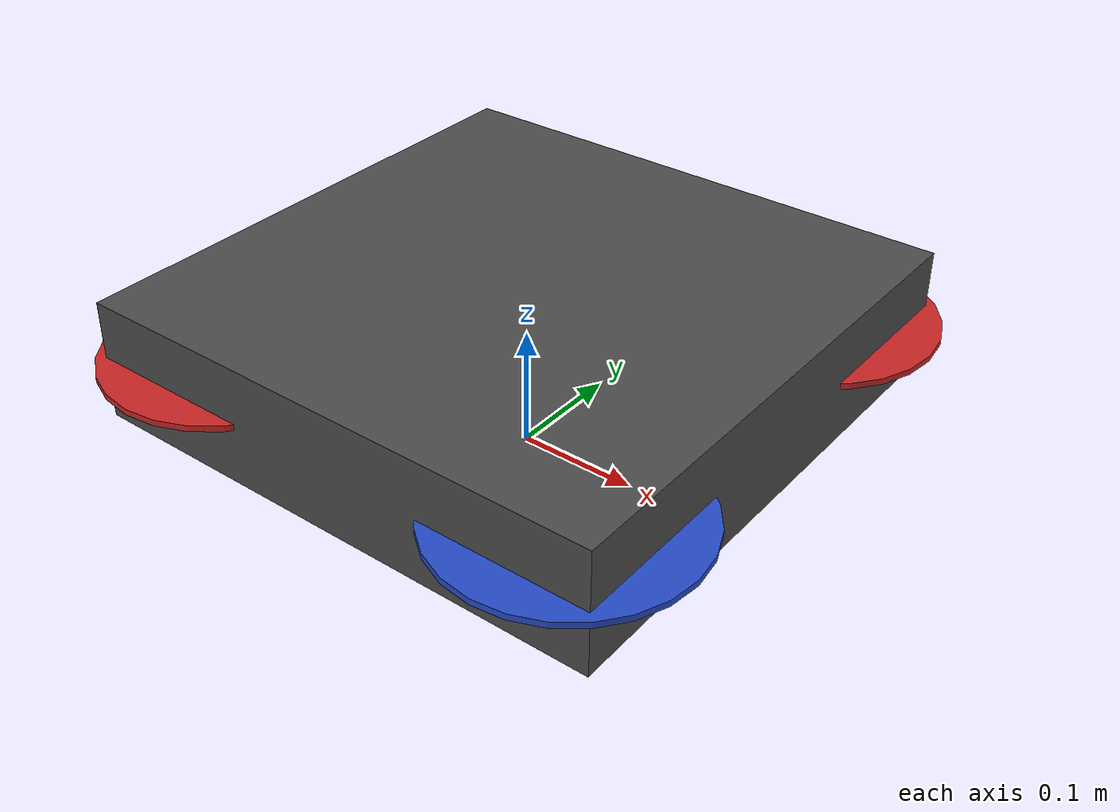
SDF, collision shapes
<?xml version='1.0'?>
<sdf version='1.6'>
  <model name='f450_drone'>

    <!-- Base F450 Frame -->
    <link name='base_link'>
      <pose>0 0 0.1 0 0 0</pose>
      <inertial>
        <pose>0 0 0 0 0 0</pose>
        <mass>1.5</mass>  <!-- F450 frame + electronics ~1.5kg -->
        <inertia>
          <ixx>0.0347563</ixx>
          <ixy>0</ixy>
          <ixz>0</ixz>
          <iyy>0.0458929</iyy>
          <iyz>0</iyz>
          <izz>0.0977</izz>
        </inertia>
      </inertial>

      <!-- Visual representation -->
      <visual name='base_visual'>
        <pose>0 0 0 0 0 0</pose>
        <geometry>
          <mesh>
            <uri>model://iris/meshes/iris.dae</uri>  <!-- Using Iris mesh as placeholder -->
            <scale>1.2 1.2 1.0</scale>  <!-- Scale up for F450 size -->
          </mesh>
        </geometry>
        <material>
          <script>
            <name>Gazebo/DarkGrey</name>
          </script>
        </material>
      </visual>

      <!-- Collision -->
      <collision name='base_collision'>
        <pose>0 0 0 0 0 0</pose>
        <geometry>
          <box>
            <size>0.45 0.45 0.1</size>  <!-- F450 approximate dimensions -->
          </box>
        </geometry>
      </collision>
    </link>

    <!-- Rotors -->
    <link name='rotor_0'>
      <pose>0.16 -0.16 0.1 0 0 0</pose>
      <inertial>
        <mass>0.025</mass>
        <inertia>
          <ixx>1e-06</ixx>
          <ixy>0</ixy>
          <ixz>0</ixz>
          <iyy>1e-06</iyy>
          <iyz>0</iyz>
          <izz>1e-06</izz>
        </inertia>
      </inertial>
      <visual name='rotor_0_visual'>
        <geometry>
          <cylinder>
            <length>0.005</length>
            <radius>0.1</radius>
          </cylinder>
        </geometry>
        <material>
          <script>
            <name>Gazebo/Blue</name>
          </script>
        </material>
      </visual>
      <collision name='rotor_0_collision'>
        <geometry>
          <cylinder>
            <length>0.005</length>
            <radius>0.1</radius>
          </cylinder>
        </geometry>
      </collision>
    </link>

    <link name='rotor_1'>
      <pose>-0.16 0.16 0.1 0 0 0</pose>
      <inertial>
        <mass>0.025</mass>
        <inertia>
          <ixx>1e-06</ixx>
          <ixy>0</ixy>
          <ixz>0</ixz>
          <iyy>1e-06</iyy>
          <iyz>0</iyz>
          <izz>1e-06</izz>
        </inertia>
      </inertial>
      <visual name='rotor_1_visual'>
        <geometry>
          <cylinder>
            <length>0.005</length>
            <radius>0.1</radius>
          </cylinder>
        </geometry>
        <material>
          <script>
            <name>Gazebo/Blue</name>
          </script>
        </material>
      </visual>
      <collision name='rotor_1_collision'>
        <geometry>
          <cylinder>
            <length>0.005</length>
            <radius>0.1</radius>
          </cylinder>
        </geometry>
      </collision>
    </link>

    <link name='rotor_2'>
      <pose>0.16 0.16 0.1 0 0 0</pose>
      <inertial>
        <mass>0.025</mass>
        <inertia>
          <ixx>1e-06</ixx>
          <ixy>0</ixy>
          <ixz>0</ixz>
          <iyy>1e-06</iyy>
          <iyz>0</iyz>
          <izz>1e-06</izz>
        </inertia>
      </inertial>
      <visual name='rotor_2_visual'>
        <geometry>
          <cylinder>
            <length>0.005</length>
            <radius>0.1</radius>
          </cylinder>
        </geometry>
        <material>
          <script>
            <name>Gazebo/Red</name>
          </script>
        </material>
      </visual>
      <collision name='rotor_2_collision'>
        <geometry>
          <cylinder>
            <length>0.005</length>
            <radius>0.1</radius>
          </cylinder>
        </geometry>
      </collision>
    </link>

    <link name='rotor_3'>
      <pose>-0.16 -0.16 0.1 0 0 0</pose>
      <inertial>
        <mass>0.025</mass>
        <inertia>
          <ixx>1e-06</ixx>
          <ixy>0</ixy>
          <ixz>0</ixz>
          <iyy>1e-06</iyy>
          <iyz>0</iyz>
          <izz>1e-06</izz>
        </inertia>
      </inertial>
      <visual name='rotor_3_visual'>
        <geometry>
          <cylinder>
            <length>0.005</length>
            <radius>0.1</radius>
          </cylinder>
        </geometry>
        <material>
          <script>
            <name>Gazebo/Red</name>
          </script>
        </material>
      </visual>
      <collision name='rotor_3_collision'>
        <geometry>
          <cylinder>
            <length>0.005</length>
            <radius>0.1</radius>
          </cylinder>
        </geometry>
      </collision>
    </link>

    <!-- Intel RealSense Camera -->
    <link name='realsense_camera'>
      <pose>0.1 0 0.05 0 0 0</pose>  <!-- Mounted forward on the drone -->
      <inertial>
        <mass>0.072</mass>  <!-- D435i weight -->
        <inertia>
          <ixx>1e-06</ixx>
          <ixy>0</ixy>
          <ixz>0</ixz>
          <iyy>1e-06</iyy>
          <iyz>0</iyz>
          <izz>1e-06</izz>
        </inertia>
      </inertial>

      <visual name='camera_visual'>
        <geometry>
          <box>
            <size>0.025 0.09 0.025</size>  <!-- D435i dimensions -->
          </box>
        </geometry>
        <material>
          <script>
            <name>Gazebo/Black</name>
          </script>
        </material>
      </visual>

      <collision name='camera_collision'>
        <geometry>
          <box>
            <size>0.025 0.09 0.025</size>
          </box>
        </geometry>
      </collision>

      <!-- RGB Camera Sensor -->
      <sensor name="camera" type="camera">
        <pose>0.01 0 0 0 0 0</pose>
        <camera>
          <horizontal_fov>1.047</horizontal_fov>  <!-- 60 degrees -->
          <image>
            <width>640</width>
            <height>480</height>
            <format>R8G8B8</format>
          </image>
          <clip>
            <near>0.1</near>
            <far>100</far>
          </clip>
          <noise>
            <type>gaussian</type>
            <mean>0</mean>
            <stddev>0.007</stddev>
          </noise>
        </camera>
        <always_on>1</always_on>
        <update_rate>30</update_rate>
        <visualize>true</visualize>

        <plugin name="camera_controller" filename="libgazebo_ros_camera.so">
          <ros>
            <namespace>/</namespace>
            <argument>image_raw:=camera/image_raw</argument>
            <argument>camera_info:=camera/camera_info</argument>
          </ros>
          <camera_name>camera</camera_name>
          <frame_name>camera_link</frame_name>
        </plugin>
      </sensor>

      <!-- Depth Camera Sensor -->
      <sensor name="depth_camera" type="depth">
        <pose>0.01 -0.02 0 0 0 0</pose>
        <camera>
          <horizontal_fov>1.047</horizontal_fov>  <!-- 60 degrees -->
          <image>
            <width>640</width>
            <height>480</height>
          </image>
          <clip>
            <near>0.1</near>
            <far>10</far>
          </clip>
          <noise>
            <type>gaussian</type>
            <mean>0</mean>
            <stddev>0.1</stddev>
          </noise>
        </camera>
        <always_on>1</always_on>
        <update_rate>30</update_rate>
        <visualize>true</visualize>

        <plugin name="depth_camera_controller" filename="libgazebo_ros_camera.so">
          <ros>
            <namespace>/</namespace>
            <argument>image_raw:=depth_camera/image_raw</argument>
            <argument>camera_info:=depth_camera/camera_info</argument>
            <argument>depth/image_raw:=depth_camera/depth/image_raw</argument>
            <argument>depth/camera_info:=depth_camera/depth/camera_info</argument>
          </ros>
          <camera_name>depth_camera</camera_name>
          <frame_name>depth_camera_link</frame_name>
        </plugin>
      </sensor>
    </link>

    <!-- Rotor Joints -->
    <joint name='rotor_0_joint' type='revolute'>
      <child>rotor_0</child>
      <parent>base_link</parent>
      <axis>
        <xyz>0 0 1</xyz>
        <limit>
          <lower>-1e+16</lower>
          <upper>1e+16</upper>
        </limit>
        <dynamics>
          <spring_reference>0</spring_reference>
          <spring_stiffness>0</spring_stiffness>
        </dynamics>
      </axis>
    </joint>

    <joint name='rotor_1_joint' type='revolute'>
      <child>rotor_1</child>
      <parent>base_link</parent>
      <axis>
        <xyz>0 0 1</xyz>
        <limit>
          <lower>-1e+16</lower>
          <upper>1e+16</upper>
        </limit>
        <dynamics>
          <spring_reference>0</spring_reference>
          <spring_stiffness>0</spring_stiffness>
        </dynamics>
      </axis>
    </joint>

    <joint name='rotor_2_joint' type='revolute'>
      <child>rotor_2</child>
      <parent>base_link</parent>
      <axis>
        <xyz>0 0 1</xyz>
        <limit>
          <lower>-1e+16</lower>
          <upper>1e+16</upper>
        </limit>
        <dynamics>
          <spring_reference>0</spring_reference>
          <spring_stiffness>0</spring_stiffness>
        </dynamics>
      </axis>
    </joint>

    <joint name='rotor_3_joint' type='revolute'>
      <child>rotor_3</child>
      <parent>base_link</parent>
      <axis>
        <xyz>0 0 1</xyz>
        <limit>
          <lower>-1e+16</lower>
          <upper>1e+16</upper>
        </limit>
        <dynamics>
          <spring_reference>0</spring_reference>
          <spring_stiffness>0</spring_stiffness>
        </dynamics>
      </axis>
    </joint>

    <!-- Camera Mount Joint -->
    <joint name='camera_joint' type='fixed'>
      <child>realsense_camera</child>
      <parent>base_link</parent>
    </joint>

    <!-- Motor Plugins -->
    <plugin name='rotor_0_motor_model' filename='libgazebo_motor_model.so'>
      <jointName>rotor_0_joint</jointName>
      <linkName>rotor_0</linkName>
      <turningDirection>ccw</turningDirection>
      <timeConstantUp>0.0125</timeConstantUp>
      <timeConstantDown>0.025</timeConstantDown>
      <maxRotVelocity>1100</maxRotVelocity>
      <motorConstant>8.54858e-06</motorConstant>
      <momentConstant>0.016</momentConstant>
      <commandSubTopic>/gazebo/command/motor_speed</commandSubTopic>
      <motorNumber>0</motorNumber>
      <rotorDragCoefficient>8.06428e-05</rotorDragCoefficient>
      <rollingMomentCoefficient>1e-06</rollingMomentCoefficient>
      <motorSpeedPubTopic>/motor_speed/0</motorSpeedPubTopic>
      <rotorVelocitySlowdownSim>10</rotorVelocitySlowdownSim>
    </plugin>

    <plugin name='rotor_1_motor_model' filename='libgazebo_motor_model.so'>
      <jointName>rotor_1_joint</jointName>
      <linkName>rotor_1</linkName>
      <turningDirection>ccw</turningDirection>
      <timeConstantUp>0.0125</timeConstantUp>
      <timeConstantDown>0.025</timeConstantDown>
      <maxRotVelocity>1100</maxRotVelocity>
      <motorConstant>8.54858e-06</motorConstant>
      <momentConstant>0.016</momentConstant>
      <commandSubTopic>/gazebo/command/motor_speed</commandSubTopic>
      <motorNumber>1</motorNumber>
      <rotorDragCoefficient>8.06428e-05</rotorDragCoefficient>
      <rollingMomentCoefficient>1e-06</rollingMomentCoefficient>
      <motorSpeedPubTopic>/motor_speed/1</motorSpeedPubTopic>
      <rotorVelocitySlowdownSim>10</rotorVelocitySlowdownSim>
    </plugin>

    <plugin name='rotor_2_motor_model' filename='libgazebo_motor_model.so'>
      <jointName>rotor_2_joint</jointName>
      <linkName>rotor_2</linkName>
      <turningDirection>cw</turningDirection>
      <timeConstantUp>0.0125</timeConstantUp>
      <timeConstantDown>0.025</timeConstantDown>
      <maxRotVelocity>1100</maxRotVelocity>
      <motorConstant>8.54858e-06</motorConstant>
      <momentConstant>0.016</momentConstant>
      <commandSubTopic>/gazebo/command/motor_speed</commandSubTopic>
      <motorNumber>2</motorNumber>
      <rotorDragCoefficient>8.06428e-05</rotorDragCoefficient>
      <rollingMomentCoefficient>1e-06</rollingMomentCoefficient>
      <motorSpeedPubTopic>/motor_speed/2</motorSpeedPubTopic>
      <rotorVelocitySlowdownSim>10</rotorVelocitySlowdownSim>
    </plugin>

    <plugin name='rotor_3_motor_model' filename='libgazebo_motor_model.so'>
      <jointName>rotor_3_joint</jointName>
      <linkName>rotor_3</linkName>
      <turningDirection>cw</turningDirection>
      <timeConstantUp>0.0125</timeConstantUp>
      <timeConstantDown>0.025</timeConstantDown>
      <maxRotVelocity>1100</maxRotVelocity>
      <motorConstant>8.54858e-06</motorConstant>
      <momentConstant>0.016</momentConstant>
      <commandSubTopic>/gazebo/command/motor_speed</commandSubTopic>
      <motorNumber>3</motorNumber>
      <rotorDragCoefficient>8.06428e-05</rotorDragCoefficient>
      <rollingMomentCoefficient>1e-06</rollingMomentCoefficient>
      <motorSpeedPubTopic>/motor_speed/3</motorSpeedPubTopic>
      <rotorVelocitySlowdownSim>10</rotorVelocitySlowdownSim>
    </plugin>

    <!-- IMU Plugin -->
    <plugin name='imu_plugin' filename='libgazebo_imu_plugin.so'>
      <robotNamespace></robotNamespace>
      <linkName>base_link</linkName>
      <imuTopic>/imu</imuTopic>
      <gyroscopeNoiseDensity>0.0003394</gyroscopeNoiseDensity>
      <gyroscopeRandomWalk>3.8785e-05</gyroscopeRandomWalk>
      <gyroscopeBiasCorrelationTime>1000.0</gyroscopeBiasCorrelationTime>
      <gyroscopeTurnOnBiasSigma>0.0087</gyroscopeTurnOnBiasSigma>
      <accelerometerNoiseDensity>0.004</accelerometerNoiseDensity>
      <accelerometerRandomWalk>0.006</accelerometerRandomWalk>
      <accelerometerBiasCorrelationTime>300.0</accelerometerBiasCorrelationTime>
      <accelerometerTurnOnBiasSigma>0.196</accelerometerTurnOnBiasSigma>
    </plugin>

    <!-- MAVLink Interface Plugin -->
    <plugin name='mavlink_interface' filename='libgazebo_mavlink_interface.so'>
      <robotNamespace></robotNamespace>
      <imuSubTopic>/imu</imuSubTopic>
      <motorSpeedCommandPubTopic>/gazebo/command/motor_speed</motorSpeedCommandPubTopic>
      <mavlink_addr>INADDR_ANY</mavlink_addr>
      <mavlink_udp_port>14560</mavlink_udp_port>
      <serialEnabled>false</serialEnabled>
      <serialDevice>/dev/ttyACM0</serialDevice>
      <baudRate>921600</baudRate>
      <qgc_addr>INADDR_ANY</qgc_addr>
      <qgc_udp_port>14550</qgc_udp_port>
      <sdk_addr>INADDR_ANY</sdk_addr>
      <sdk_udp_port>14540</sdk_udp_port>
      <hil_mode>false</hil_mode>
      <hil_state_level>false</hil_state_level>
      <vehicle_is_tailsitter>false</vehicle_is_tailsitter>
      <send_vision_estimation>false</send_vision_estimation>
      <send_odometry>false</send_odometry>
      <enable_lockstep>true</enable_lockstep>
      <use_tcp>true</use_tcp>
    </plugin>

  </model>
</sdf>
